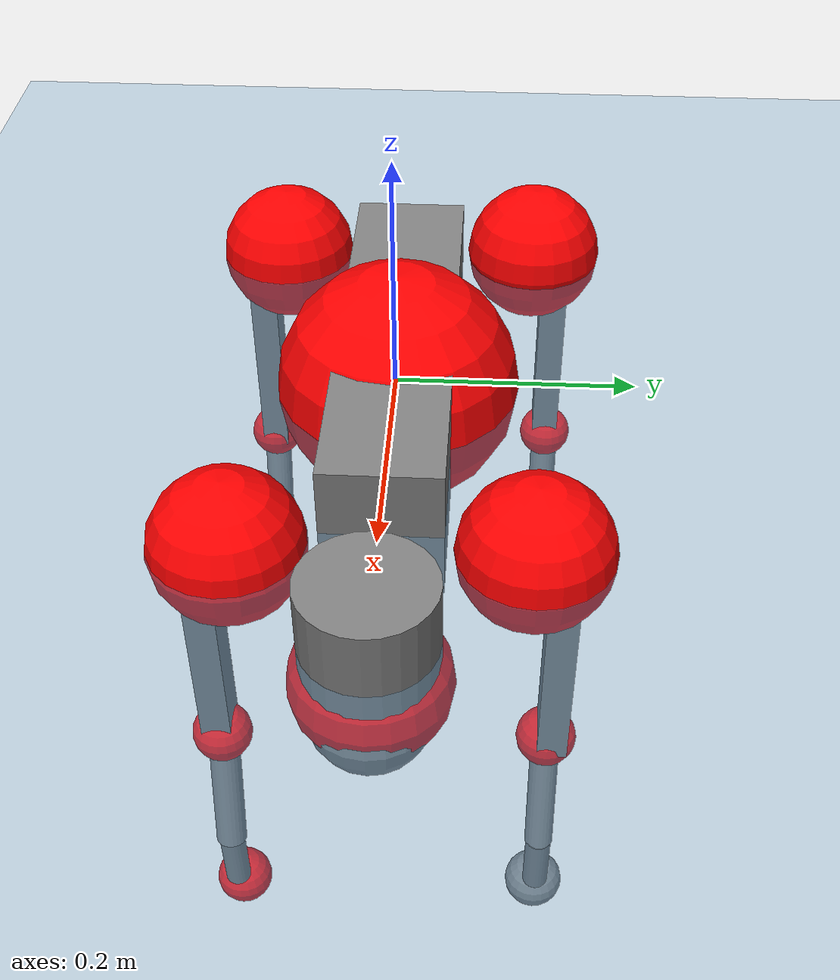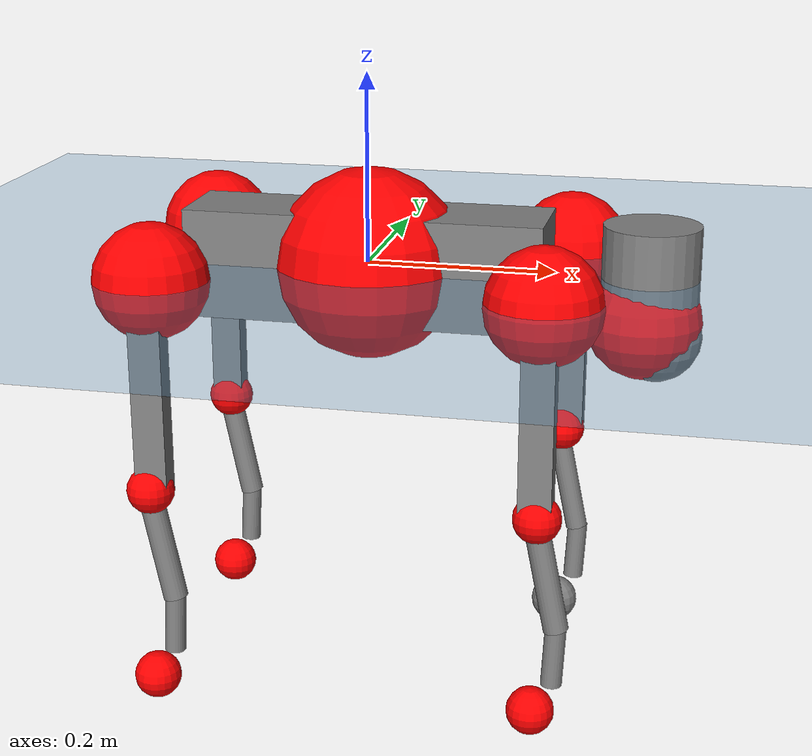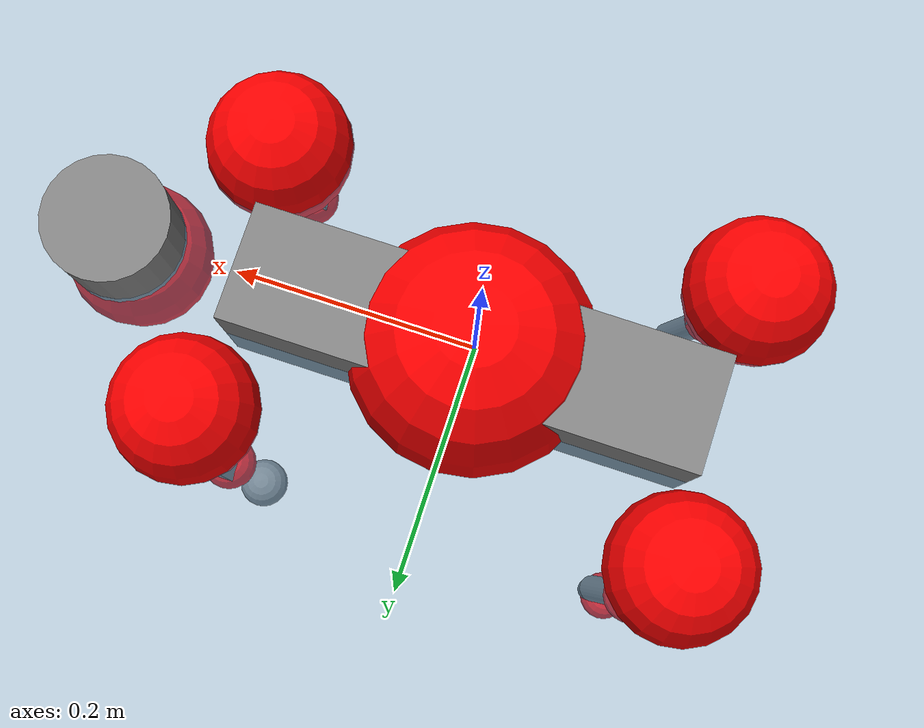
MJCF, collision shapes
<mujoco model="go2">
  <compiler angle="radian" assetdir="assets" balanceinertia="true" inertiafromgeom="false"/>

  <option timestep="0.005" density="1.2" viscosity="2e-05"/>

  <size nkey="1"/>

  <visual>
    <quality shadowsize="8192"/>
    <map shadowclip="0.5"/>
  </visual>

  <default>
    <default class="/">
      <geom contype="0" conaffinity="0" group="1" solref="-1000 -80"/>
      <site size="0.01 0.005 0.005" group="5"/>
      <general forcelimited="true" biastype="affine" gainprm="20" biasprm="0 -20 -0.5"/>
      <default class="go2">
        <joint armature="0.01" damping="0.01" frictionloss="0.2"/>
        <geom condim="1" margin="0.001"/>
        <default class="visual">
          <geom type="mesh" group="2"/>
        </default>
        <default class="collision">
          <geom group="3"/>
          <default class="foot">
            <geom size="0.022 0 0" condim="6" priority="1" friction="0.8 0.02 0.01" solimp="0.015 1 0.022"/>
          </default>
        </default>
        <default class="reward_collision_sphere">
          <geom group="5" rgba="1 0 0 1"/>
        </default>
      </default>
    </default>
  </default>

  <asset>
    <texture type="skybox" colorspace="auto" name="//unnamed_texture_0" builtin="gradient" rgb1="0.95 0.95 0.95" rgb2="0.95 0.95 0.95" width="100" height="600"/>
    <texture type="2d" colorspace="auto" name="texplane" builtin="checker" rgb1="0.345 0.575 0.748" rgb2="0.345 0.575 0.748" markrgb="1 1 1" width="512" height="512"/>
    <material name="MatPlane" class="/" texture="texplane" texuniform="true" texrepeat="2 2" specular="0.9"/>
    <material name="metal" class="/" rgba="0.9 0.95 0.95 1"/>
    <material name="black" class="/" rgba="0 0 0 1"/>
    <material name="white" class="/"/>
    <material name="gray" class="/" rgba="0.671705 0.692426 0.77427 1"/>
    <mesh name="base_0" class="/" file="base_0.obj"/>
    <mesh name="base_1" class="/" file="base_1.obj"/>
    <mesh name="base_2" class="/" file="base_2.obj"/>
    <mesh name="base_3" class="/" file="base_3.obj"/>
    <mesh name="base_4" class="/" file="base_4.obj"/>
    <mesh name="hip_0" class="/" file="hip_0.obj"/>
    <mesh name="hip_1" class="/" file="hip_1.obj"/>
    <mesh name="thigh_0" class="/" file="thigh_0.obj"/>
    <mesh name="thigh_1" class="/" file="thigh_1.obj"/>
    <mesh name="thigh_mirror_0" class="/" file="thigh_mirror_0.obj"/>
    <mesh name="thigh_mirror_1" class="/" file="thigh_mirror_1.obj"/>
    <mesh name="calf_0" class="/" file="calf_0.obj"/>
    <mesh name="calf_1" class="/" file="calf_1.obj"/>
    <mesh name="calf_mirror_0" class="/" file="calf_mirror_0.obj"/>
    <mesh name="calf_mirror_1" class="/" file="calf_mirror_1.obj"/>
    <mesh name="foot" class="/" file="foot.obj"/>
  </asset>

  <worldbody>
    <geom name="floor" class="/" size="100 100 0.125" type="plane" group="0" material="MatPlane"/>
    <light name="toplight_shadow" class="/" pos="0 0 5" dir="0.0990148 0.0990148 -0.990148" type="directional" ambient="0.04 0.04 0.04" diffuse="0.55 0.55 0.55" specular="0.12 0.12 0.12"/>
    <light name="toplight_fill" class="/" pos="0 0 5" dir="0.0990148 0.0990148 -0.990148" type="directional" castshadow="false" ambient="0.04 0.04 0.04" diffuse="0.3 0.3 0.3" specular="0.08 0.08 0.08"/>
    <body name="trunk" childclass="go2" pos="0.000882073 0.00220602 -0.00105225" quat="1 3.8213e-06 -1.32964e-05 -3.39077e-05">
      <inertial pos="0.0209337 0.0005707 -0.00429733" quat="-0.00619847 0.719134 -0.00407105 0.694831" mass="7.43672" diaginertia="0.126365 0.0906656 0.0255796"/>
      <joint name="//unnamed_joint_0" type="free" armature="0" damping="0" frictionloss="0"/>
      <geom name="//unnamed_geom_1" class="visual" material="black" mesh="base_0"/>
      <geom name="//unnamed_geom_2" class="visual" material="black" mesh="base_1"/>
      <geom name="//unnamed_geom_3" class="visual" material="black" mesh="base_2"/>
      <geom name="//unnamed_geom_4" class="visual" material="white" mesh="base_3"/>
      <geom name="//unnamed_geom_5" class="visual" material="gray" mesh="base_4"/>
      <geom name="trunk_1" class="collision" size="0.190893 0.0474442 0.0578464" type="box"/>
      <geom name="trunk_2" class="collision" size="0.0507425 0.0456682" pos="0.296802 0 0.0101834" type="cylinder"/>
      <geom name="trunk_3" class="collision" size="0.0476979" pos="0.305133 0 -0.0611006"/>
      <geom name="//unnamed_geom_9" class="reward_collision_sphere" size="0.101485"/>
      <geom name="//unnamed_geom_10" class="reward_collision_sphere" size="0.060891" pos="0.291595 0 -0.0458254"/>
      <site name="imu" pos="-0.0234328 0.0276275 0.0326709" size="0.0101485"/>
      <camera name="track" pos="0 -1.96959 0" quat="0.707107 0.707107 0 0" mode="trackcom"/>
      <camera name="ego_camera" pos="0.32492 0 0.0458254" quat="-0.5 -0.5 0.5 0.5"/>
      <body name="FL_hip" pos="0.201164 0.0461928 -0.000825075" quat="0.999997 7.83761e-05 0.00229005 -0.00108391">
        <inertial pos="-0.00659268 0.00341723 -0.00265384" quat="0.500025 0.4969 0.507709 0.495274" mass="0.672773" diaginertia="0.0010341 0.000519713 0.000506061"/>
        <joint name="FL_hip_joint" pos="0 0 0" axis="0.999991 0.00334735 0.00248217" range="-1.11969 1.06379" armature="0.00939202" damping="0.0274087" frictionloss="0.179926"/>
        <geom name="//unnamed_geom_11" class="visual" material="metal" mesh="hip_0"/>
        <geom name="//unnamed_geom_12" class="visual" material="gray" mesh="hip_1"/>
        <geom name="//unnamed_geom_13" class="collision" size="0.0466831 0.020297" pos="0 0.0787838 0" quat="0.707107 0.707107 0 0" type="cylinder"/>
        <geom name="//unnamed_geom_14" class="reward_collision_sphere" size="0.060891" pos="0 0.0689358 0"/>
        <body name="FL_thigh" pos="0.000237542 0.0926881 -0.00118403" quat="1 -2.21292e-05 -6.50394e-05 -0.00021516">
          <inertial pos="-0.00381683 -0.0181367 -0.0277431" quat="0.831747 0.0908422 -0.0107141 0.547568" mass="1.17928" diaginertia="0.0075796 0.00541538 0.00100185"/>
          <joint name="FL_thigh_joint" pos="0 0 0" axis="0.00612845 0.999725 0.0226451" stiffness="0.00515003" range="-1.58387 3.38848" armature="0.00977146" damping="0.0357803" frictionloss="0.202798"/>
          <geom name="//unnamed_geom_15" class="visual" material="metal" mesh="thigh_0"/>
          <geom name="//unnamed_geom_16" class="visual" material="gray" mesh="thigh_1"/>
          <geom name="//unnamed_geom_17" class="collision" size="0.108082 0.0124319 0.0172524" pos="0 0 -0.108454" quat="0.707107 0 0.707107 0" type="box"/>
          <body name="FL_calf" pos="-0.00577681 -0.00436308 -0.217778" quat="1 0.000115255 -3.19839e-05 -0.000367563">
            <inertial pos="0.00407045 -0.00120821 -0.14442" quat="0.710953 0.000667951 -0.00182523 0.703236" mass="0.240013" diaginertia="0.00180538 0.00130896 5.76495e-05"/>
            <joint name="FL_calf_joint" pos="0 0 0" axis="0.00833242 0.999965 -0.000588764" stiffness="0.0293989" range="-2.73167 -0.778596" armature="0.010535" damping="0" frictionloss="0.182526"/>
            <geom name="//unnamed_geom_18" class="visual" material="gray" mesh="calf_0"/>
            <geom name="//unnamed_geom_19" class="visual" material="black" mesh="calf_1"/>
            <geom name="FL_calf0" class="collision" size="0.0121782 0.060891" pos="0.00833128 0 -0.0611006" quat="0.994493 0 -0.104807 0" type="cylinder"/>
            <geom name="//unnamed_geom_21" class="collision" size="0.0111633 0.0329826" pos="0.0208282 0 -0.150715" quat="0.999688 0 0.0249974 0" type="cylinder"/>
            <geom name="//unnamed_geom_22" class="visual" pos="0 0 -0.216907" quat="1 0 0 0" material="black" mesh="foot"/>
            <geom name="FL_foot" class="foot" size="0.0263797" pos="-0.00208282 0 -0.216907"/>
            <geom name="//unnamed_geom_24" class="reward_collision_sphere" size="0.0253712"/>
            <geom name="//unnamed_geom_25" class="reward_collision_sphere" size="0.0253712" pos="-0.00208282 0 -0.216907"/>
            <site name="FL_foot" class="foot" pos="-0.00208282 0 -0.216907" size="0.0101485"/>
          </body>
        </body>
      </body>
      <body name="FR_hip" pos="0.202412 -0.0446953 -0.00416248" quat="1 7.51683e-05 -2.24271e-05 0.000299438">
        <inertial pos="-0.00808918 -0.00134568 0.000224394" quat="0.492312 0.495128 0.513865 0.498417" mass="0.677013" diaginertia="0.00101412 0.000534371 0.000513131"/>
        <joint name="FR_hip_joint" pos="0 0 0" axis="1 -0.000216821 0.00016854" stiffness="0.0147318" range="-1.0705 1.07329" armature="0.0101791" damping="0.00398615" frictionloss="0.225383"/>
        <geom name="//unnamed_geom_26" class="visual" pos="0 -2.92235e-10 -1.25345e-08" quat="4.63268e-05 1 0 0" material="metal" mesh="hip_0"/>
        <geom name="//unnamed_geom_27" class="visual" pos="0 -4.73747e-10 3.10027e-08" quat="4.63268e-05 1 0 0" material="gray" mesh="hip_1"/>
        <geom name="//unnamed_geom_28" class="collision" size="0.0466831 0.020297" pos="0 -0.0787838 0" quat="0.707107 0.707107 0 0" type="cylinder"/>
        <geom name="//unnamed_geom_29" class="reward_collision_sphere" size="0.060891" pos="0 -0.0689358 0"/>
        <body name="FR_thigh" pos="0.00103878 -0.0940817 0.0020337" quat="0.999999 -0.00114978 -0.000276727 -0.00024942">
          <inertial pos="-0.00446533 0.0224402 -0.0289398" quat="0.537489 -0.0373395 0.101857 0.836263" mass="1.17593" diaginertia="0.00683864 0.00514329 0.000915143"/>
          <joint name="FR_thigh_joint" pos="0 0 0" axis="-0.000700342 -0.999995 -0.00307113" range="-3.40889 1.53486" armature="0.0110142" damping="0.017955" frictionloss="0.228734"/>
          <geom name="//unnamed_geom_30" class="visual" material="metal" mesh="thigh_mirror_0"/>
          <geom name="//unnamed_geom_31" class="visual" material="gray" mesh="thigh_mirror_1"/>
          <geom name="//unnamed_geom_32" class="collision" size="0.108082 0.0124319 0.0172524" pos="0 0 -0.108454" quat="0.707107 0 0.707107 0" type="box"/>
          <body name="FR_calf" pos="0.00151003 0.00154169 -0.216906" quat="1 0.000106869 -0.000114143 2.03739e-06">
            <inertial pos="0.00905938 0.000390838 -0.14982" quat="0.705121 -0.00540104 0.00438731 0.709053" mass="0.276051" diaginertia="0.00200184 0.00135764 6.51391e-05"/>
            <joint name="FR_calf_joint" pos="0 0 0" axis="0.00449351 -0.999923 0.0115471" range="0.83232 2.70149" armature="0.00943037" damping="0.00679451" frictionloss="0.204214"/>
            <geom name="//unnamed_geom_33" class="visual" material="gray" mesh="calf_mirror_0"/>
            <geom name="//unnamed_geom_34" class="visual" material="black" mesh="calf_mirror_1"/>
            <geom name="FR_calf0" class="collision" size="0.013193 0.060891" pos="0.0104141 0 -0.0611006" quat="0.995004 0 -0.0998334 0" type="cylinder"/>
            <geom name="//unnamed_geom_36" class="collision" size="0.0111633 0.0329826" pos="0.0208282 0 -0.150715" quat="0.999688 0 0.0249974 0" type="cylinder"/>
            <geom name="//unnamed_geom_37" class="visual" pos="0 0 -0.216907" quat="1 0 0 0" material="black" mesh="foot"/>
            <geom name="FR_foot" class="foot" size="0.0195987" pos="-0.00208282 0 -0.216907"/>
            <geom name="//unnamed_geom_39" class="reward_collision_sphere" size="0.0253712"/>
            <geom name="//unnamed_geom_40" class="reward_collision_sphere" size="0.0253712" pos="-0.00208282 0 -0.216907"/>
            <site name="FR_foot" class="foot" pos="-0.00208282 0 -0.216907" size="0.0101485"/>
          </body>
        </body>
      </body>
      <body name="RL_hip" pos="-0.204359 0.0441387 0.00441204" quat="1 -5.04317e-05 -2.93132e-05 -8.32048e-06">
        <inertial pos="0.00505305 0.000343648 0.00421589" quat="0.498625 0.494985 0.503532 0.502811" mass="0.660504" diaginertia="0.00101941 0.000541259 0.000521499"/>
        <joint name="RL_hip_joint" pos="0 0 0" axis="-0.999976 0.00482136 -0.00500739" stiffness="0.0125544" range="-1.14968 0.979886" armature="0.0102839" damping="0.0120556" frictionloss="0.168644"/>
        <geom name="//unnamed_geom_41" class="visual" pos="-2.00951e-10 0 -3.93911e-08" quat="4.63268e-05 0 1 0" material="metal" mesh="hip_0"/>
        <geom name="//unnamed_geom_42" class="visual" pos="-3.25766e-10 0 -3.49343e-08" quat="4.63268e-05 0 1 0" material="gray" mesh="hip_1"/>
        <geom name="//unnamed_geom_43" class="collision" size="0.0466831 0.020297" pos="0 0.0787838 0" quat="0.707107 0.707107 0 0" type="cylinder"/>
        <geom name="//unnamed_geom_44" class="reward_collision_sphere" size="0.060891" pos="0 0.0689358 0"/>
        <body name="RL_thigh" pos="0.000416547 0.0903141 0.00135561" quat="1 1.78658e-05 1.61904e-05 -8.03961e-06">
          <inertial pos="-0.000835613 -0.0199976 -0.0278702" quat="0.827451 0.0836647 -0.0359855 0.554103" mass="1.19256" diaginertia="0.00782507 0.00553709 0.00102685"/>
          <joint name="RL_thigh_joint" pos="0 0 0" axis="-0.00405066 0.999907 0.0130441" range="-0.456189 4.48913" armature="0.0112338" damping="0.0102299" frictionloss="0.207441"/>
          <geom name="//unnamed_geom_45" class="visual" material="metal" mesh="thigh_0"/>
          <geom name="//unnamed_geom_46" class="visual" material="gray" mesh="thigh_1"/>
          <geom name="//unnamed_geom_47" class="collision" size="0.108082 0.0124319 0.0172524" pos="0 0 -0.108454" quat="0.707107 0 0.707107 0" type="box"/>
          <body name="RL_calf" pos="0.00035849 0.0011982 -0.215804" quat="1 -0.000171316 -6.74616e-06 0.000148352">
            <inertial pos="0.00702272 -0.000848004 -0.144399" quat="0.703937 0.00254585 -0.00430819 0.710245" mass="0.253548" diaginertia="0.00182168 0.00137232 5.6029e-05"/>
            <joint name="RL_calf_joint" pos="0 0 0" axis="-0.000219548 0.999997 0.00235149" stiffness="0.0289368" range="-2.67918 -0.833331" armature="0.0109816" damping="0" frictionloss="0.206837"/>
            <geom name="//unnamed_geom_48" class="visual" material="gray" mesh="calf_0"/>
            <geom name="//unnamed_geom_49" class="visual" material="black" mesh="calf_1"/>
            <geom name="RL_calf0" class="collision" size="0.013193 0.060891" pos="0.0104141 0 -0.0611006" quat="0.995004 0 -0.0998334 0" type="cylinder"/>
            <geom name="//unnamed_geom_51" class="collision" size="0.0111633 0.0329826" pos="0.0208282 0 -0.150715" quat="0.999688 0 0.0249974 0" type="cylinder"/>
            <geom name="//unnamed_geom_52" class="visual" pos="0 0 -0.216907" quat="1 0 0 0" material="black" mesh="foot"/>
            <geom name="RL_foot" class="foot" size="0.0232021" pos="-0.00208282 0 -0.216907"/>
            <geom name="//unnamed_geom_54" class="reward_collision_sphere" size="0.0253712"/>
            <geom name="//unnamed_geom_55" class="reward_collision_sphere" size="0.0253712" pos="-0.00208282 0 -0.216907"/>
            <site name="RL_foot" class="foot" pos="-0.00208282 0 -0.216907" size="0.0101485"/>
          </body>
        </body>
      </body>
      <body name="RR_hip" pos="-0.201715 -0.0483269 -0.00105689" quat="0.999999 -0.000103653 -0.00104504 -0.000224142">
        <inertial pos="0.00570673 -0.00494258 0.000761756" quat="0.498874 0.497243 0.498232 0.505607" mass="0.767082" diaginertia="0.0011154 0.00056797 0.000559985"/>
        <joint name="RR_hip_joint" pos="0 0 0" axis="-0.999968 0.00595582 -0.00526719" range="-1.00899 1.08801" armature="0.00977466" damping="0.0283547" frictionloss="0.224124"/>
        <geom name="//unnamed_geom_56" class="visual" pos="1.98991e-10 -2.92235e-10 -2.68565e-08" quat="2.14617e-09 4.63268e-05 4.63268e-05 -1" material="metal" mesh="hip_0"/>
        <geom name="//unnamed_geom_57" class="visual" pos="3.30614e-10 -4.73747e-10 -6.5937e-08" quat="2.14617e-09 4.63268e-05 4.63268e-05 -1" material="gray" mesh="hip_1"/>
        <geom name="//unnamed_geom_58" class="collision" size="0.0466831 0.020297" pos="0 -0.0787838 0" quat="0.707107 0.707107 0 0" type="cylinder"/>
        <geom name="//unnamed_geom_59" class="reward_collision_sphere" size="0.060891" pos="0 -0.0689358 0"/>
        <body name="RR_thigh" pos="0.0030937 -0.0952475 -0.00420123" quat="1 0.000497651 -0.000272341 -0.000505706">
          <inertial pos="-0.00384215 0.0210513 -0.0334189" quat="0.550904 -0.0199484 0.0843911 0.830051" mass="1.26966" diaginertia="0.00762201 0.00544169 0.00096369"/>
          <joint name="RR_thigh_joint" pos="0 0 0" axis="-0.00423094 -0.999991 0.000428724" range="-4.45658 0.457668" armature="0.010231" damping="0.018502" frictionloss="0.225983"/>
          <geom name="//unnamed_geom_60" class="visual" material="metal" mesh="thigh_mirror_0"/>
          <geom name="//unnamed_geom_61" class="visual" material="gray" mesh="thigh_mirror_1"/>
          <geom name="//unnamed_geom_62" class="collision" size="0.108082 0.0124319 0.0172524" pos="0 0 -0.108454" quat="0.707107 0 0.707107 0" type="box"/>
          <body name="RR_calf" pos="-0.00431833 -0.00179842 -0.215502" quat="1 -0.000266741 0.00078937 -0.000489352">
            <inertial pos="0.00863358 0.000285413 -0.143661" quat="0.70509 0.00119472 0.0111401 0.709029" mass="0.257776" diaginertia="0.0017772 0.00133701 5.9292e-05"/>
            <joint name="RR_calf_joint" pos="0 0 0" axis="-0.0060827 -0.999978 0.0024899" stiffness="0.00812832" range="0.819604 2.73198" armature="0.00951917" damping="0.0366972" frictionloss="0.205751"/>
            <geom name="//unnamed_geom_63" class="visual" material="gray" mesh="calf_mirror_0"/>
            <geom name="//unnamed_geom_64" class="visual" material="black" mesh="calf_mirror_1"/>
            <geom name="RR_calf0" class="collision" size="0.013193 0.060891" pos="0.0104141 0 -0.0611006" quat="0.995004 0 -0.0998334 0" type="cylinder"/>
            <geom name="//unnamed_geom_66" class="collision" size="0.0111633 0.0329826" pos="0.0208282 0 -0.150715" quat="0.999688 0 0.0249974 0" type="cylinder"/>
            <geom name="//unnamed_geom_67" class="visual" pos="0 0 -0.216907" quat="1 0 0 0" material="black" mesh="foot"/>
            <geom name="RR_foot" class="foot" size="0.0178715" pos="-0.00208282 0 -0.216907"/>
            <geom name="//unnamed_geom_69" class="reward_collision_sphere" size="0.0253712"/>
            <geom name="//unnamed_geom_70" class="reward_collision_sphere" size="0.0253712" pos="-0.00208282 0 -0.216907"/>
            <site name="RR_foot" class="foot" pos="-0.00208282 0 -0.216907" size="0.0101485"/>
          </body>
        </body>
      </body>
    </body>
  </worldbody>

  <contact>
    <pair class="/" geom1="floor" geom2="FL_foot" name="//unnamed_contact_0"/>
    <pair class="/" geom1="floor" geom2="FR_foot" name="//unnamed_contact_1"/>
    <pair class="/" geom1="floor" geom2="RL_foot" name="//unnamed_contact_2"/>
    <pair class="/" geom1="floor" geom2="RR_foot" name="//unnamed_contact_3"/>
  </contact>

  <actuator>
    <general name="FL_hip" class="/" joint="FL_hip_joint" forcerange="-26.1195 26.1195" gainprm="19.3308" biasprm="0 -19.3308 -0.472456"/>
    <general name="FL_thigh" class="/" joint="FL_thigh_joint" forcerange="-21.7026 21.7026" gainprm="19.3308" biasprm="0 -19.3308 -0.472456"/>
    <general name="FL_calf" class="/" joint="FL_calf_joint" forcerange="-52.1722 52.1722" gainprm="19.3308" biasprm="0 -19.3308 -0.472456"/>
    <general name="FR_hip" class="/" joint="FR_hip_joint" forcerange="-25.5004 25.5004" gainprm="19.3308" biasprm="0 -19.3308 -0.472456"/>
    <general name="FR_thigh" class="/" joint="FR_thigh_joint" forcerange="-24.2148 24.2148" gainprm="19.3308" biasprm="0 -19.3308 -0.472456"/>
    <general name="FR_calf" class="/" joint="FR_calf_joint" forcerange="-35.2558 35.2558" gainprm="19.3308" biasprm="0 -19.3308 -0.472456"/>
    <general name="RL_hip" class="/" joint="RL_hip_joint" forcerange="-20.5821 20.5821" gainprm="19.3308" biasprm="0 -19.3308 -0.472456"/>
    <general name="RL_thigh" class="/" joint="RL_thigh_joint" forcerange="-25.1551 25.1551" gainprm="19.3308" biasprm="0 -19.3308 -0.472456"/>
    <general name="RL_calf" class="/" joint="RL_calf_joint" forcerange="-47.4481 47.4481" gainprm="19.3308" biasprm="0 -19.3308 -0.472456"/>
    <general name="RR_hip" class="/" joint="RR_hip_joint" forcerange="-23.58 23.58" gainprm="19.3308" biasprm="0 -19.3308 -0.472456"/>
    <general name="RR_thigh" class="/" joint="RR_thigh_joint" forcerange="-28.766 28.766" gainprm="19.3308" biasprm="0 -19.3308 -0.472456"/>
    <general name="RR_calf" class="/" joint="RR_calf_joint" forcerange="-49.395 49.395" gainprm="19.3308" biasprm="0 -19.3308 -0.472456"/>
  </actuator>

  <sensor>
    <gyro site="imu" name="imu_angular_velocity"/>
    <velocimeter site="imu" name="imu_linear_velocity"/>
    <framelinvel objtype="site" objname="FL_foot" name="FL_foot_global_linear_velocity"/>
    <framelinvel objtype="site" objname="FR_foot" name="FR_foot_global_linear_velocity"/>
    <framelinvel objtype="site" objname="RL_foot" name="RL_foot_global_linear_velocity"/>
    <framelinvel objtype="site" objname="RR_foot" name="RR_foot_global_linear_velocity"/>
  </sensor>

  <keyframe>
    <key name="home" qpos="0 0 0.325 1 0 0 0 0.1 0.8 -1.5 -0.1 -0.8 1.5 -0.1 0.8 -1.5 0.1 -0.8 1.5"/>
  </keyframe>
</mujoco>
